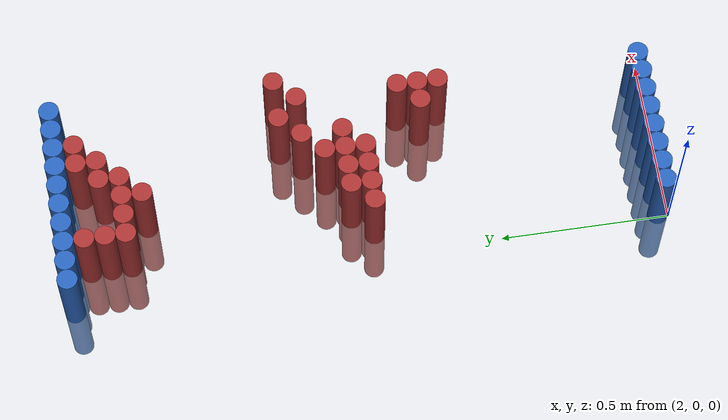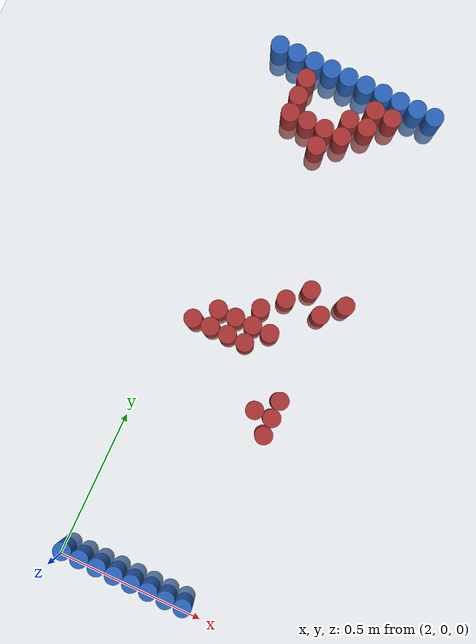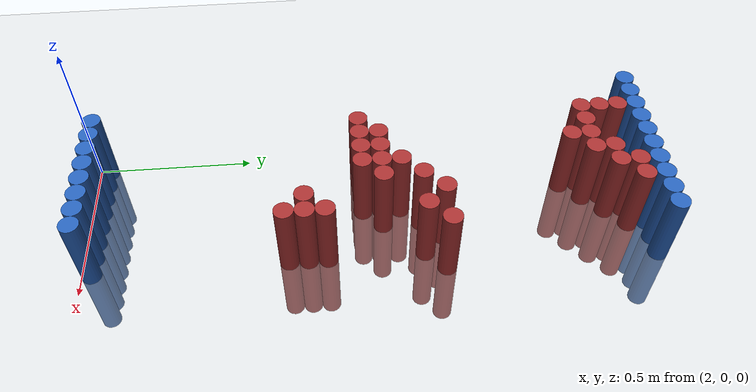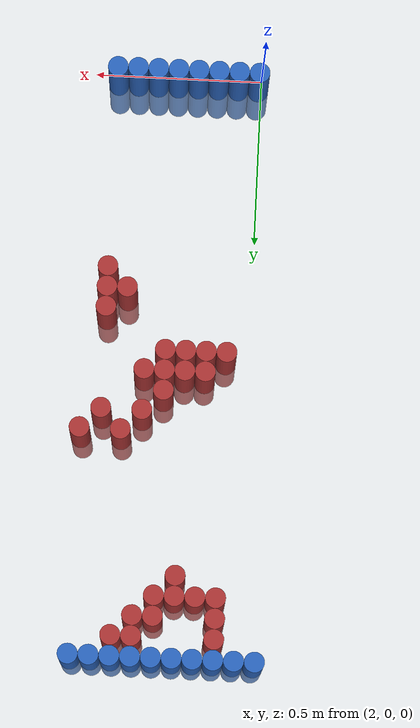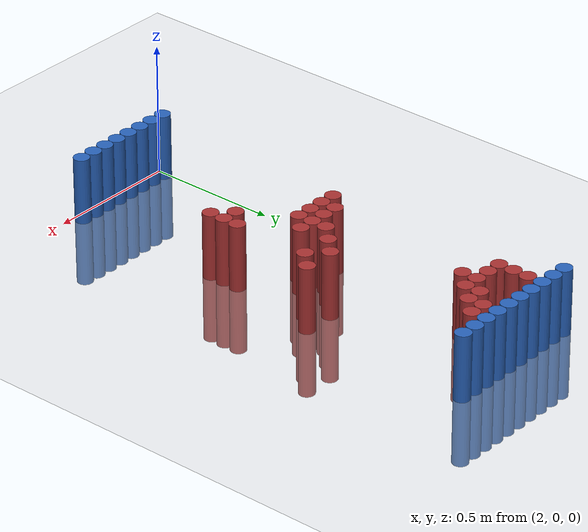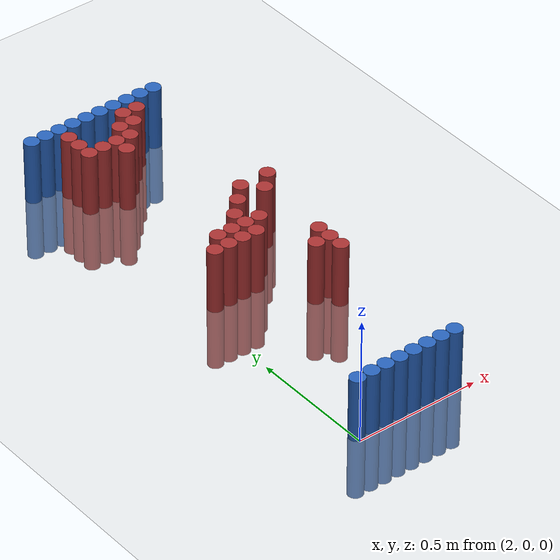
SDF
<sdf version="1.6">
 <world name="default">
  <model name="ground_plane">
   <static>1</static>
   <link name="link">
    <collision name="collision">
     <geometry><plane><normal>0 0 1</normal><size>100 100</size></plane></geometry>
     <surface><friction><ode><mu>100</mu><mu2>50</mu2></ode></friction></surface>
    </collision>
    <visual name="visual">
     <cast_shadows>0</cast_shadows>
     <geometry><plane><normal>0 0 1</normal><size>100 100</size></plane></geometry>
     <material>
      <script><uri>file://media/materials/scripts/gazebo.material</uri><name>Gazebo/Grey</name></script>
     </material>
    </visual>
   </link>
  </model>
  <model name="unit_cylinder_92">
   <static>1</static>
   <pose>1.950000 1.770000 0.000000 0.000000 0.000000 0.000000</pose>
   <link name="link">
    <inertial>
     <mass>1</mass>
     <inertia><ixx>0.145833</ixx><ixy>0</ixy><ixz>0</ixz><iyy>0.145833</iyy><iyz>0</iyz><izz>0.125</izz></inertia>
    </inertial>
    <collision name="collision">
     <geometry><cylinder><radius>0.030000</radius><length>0.5</length></cylinder></geometry>
    </collision>
    <visual name="visual">
     <geometry><cylinder><radius>0.030000</radius><length>0.5</length></cylinder></geometry>
     <material>
      <ambient>0.152000 0.379000 0.720000 1</ambient>
      <diffuse>0.152000 0.379000 0.720000 1</diffuse>
     </material>
     <material>
      <script><name>Gazebo/Grey</name><uri>file://media/materials/scripts/gazebo.material</uri></script>
     </material>
    </visual>
   </link>
  </model>
  <model name="unit_cylinder_93">
   <static>1</static>
   <pose>2.010000 0.030000 0.000000 0.000000 0.000000 0.000000</pose>
   <link name="link">
    <inertial>
     <mass>1</mass>
     <inertia><ixx>0.145833</ixx><ixy>0</ixy><ixz>0</ixz><iyy>0.145833</iyy><iyz>0</iyz><izz>0.125</izz></inertia>
    </inertial>
    <collision name="collision">
     <geometry><cylinder><radius>0.030000</radius><length>0.5</length></cylinder></geometry>
    </collision>
    <visual name="visual">
     <geometry><cylinder><radius>0.030000</radius><length>0.5</length></cylinder></geometry>
     <material>
      <ambient>0.152000 0.379000 0.720000 1</ambient>
      <diffuse>0.152000 0.379000 0.720000 1</diffuse>
     </material>
     <material>
      <script><name>Gazebo/Grey</name><uri>file://media/materials/scripts/gazebo.material</uri></script>
     </material>
    </visual>
   </link>
  </model>
  <model name="unit_cylinder_94">
   <static>1</static>
   <pose>2.010000 1.770000 0.000000 0.000000 0.000000 0.000000</pose>
   <link name="link">
    <inertial>
     <mass>1</mass>
     <inertia><ixx>0.145833</ixx><ixy>0</ixy><ixz>0</ixz><iyy>0.145833</iyy><iyz>0</iyz><izz>0.125</izz></inertia>
    </inertial>
    <collision name="collision">
     <geometry><cylinder><radius>0.030000</radius><length>0.5</length></cylinder></geometry>
    </collision>
    <visual name="visual">
     <geometry><cylinder><radius>0.030000</radius><length>0.5</length></cylinder></geometry>
     <material>
      <ambient>0.152000 0.379000 0.720000 1</ambient>
      <diffuse>0.152000 0.379000 0.720000 1</diffuse>
     </material>
     <material>
      <script><name>Gazebo/Grey</name><uri>file://media/materials/scripts/gazebo.material</uri></script>
     </material>
    </visual>
   </link>
  </model>
  <model name="unit_cylinder_95">
   <static>1</static>
   <pose>2.070000 1.770000 0.000000 0.000000 0.000000 0.000000</pose>
   <link name="link">
    <inertial>
     <mass>1</mass>
     <inertia><ixx>0.145833</ixx><ixy>0</ixy><ixz>0</ixz><iyy>0.145833</iyy><iyz>0</iyz><izz>0.125</izz></inertia>
    </inertial>
    <collision name="collision">
     <geometry><cylinder><radius>0.030000</radius><length>0.5</length></cylinder></geometry>
    </collision>
    <visual name="visual">
     <geometry><cylinder><radius>0.030000</radius><length>0.5</length></cylinder></geometry>
     <material>
      <ambient>0.152000 0.379000 0.720000 1</ambient>
      <diffuse>0.152000 0.379000 0.720000 1</diffuse>
     </material>
     <material>
      <script><name>Gazebo/Grey</name><uri>file://media/materials/scripts/gazebo.material</uri></script>
     </material>
    </visual>
   </link>
  </model>
  <model name="unit_cylinder_96">
   <static>1</static>
   <pose>2.130000 1.770000 0.000000 0.000000 0.000000 0.000000</pose>
   <link name="link">
    <inertial>
     <mass>1</mass>
     <inertia><ixx>0.145833</ixx><ixy>0</ixy><ixz>0</ixz><iyy>0.145833</iyy><iyz>0</iyz><izz>0.125</izz></inertia>
    </inertial>
    <collision name="collision">
     <geometry><cylinder><radius>0.030000</radius><length>0.5</length></cylinder></geometry>
    </collision>
    <visual name="visual">
     <geometry><cylinder><radius>0.030000</radius><length>0.5</length></cylinder></geometry>
     <material>
      <ambient>0.152000 0.379000 0.720000 1</ambient>
      <diffuse>0.152000 0.379000 0.720000 1</diffuse>
     </material>
     <material>
      <script><name>Gazebo/Grey</name><uri>file://media/materials/scripts/gazebo.material</uri></script>
     </material>
    </visual>
   </link>
  </model>
  <model name="unit_cylinder_97">
   <static>1</static>
   <pose>2.190000 1.770000 0.000000 0.000000 0.000000 0.000000</pose>
   <link name="link">
    <inertial>
     <mass>1</mass>
     <inertia><ixx>0.145833</ixx><ixy>0</ixy><ixz>0</ixz><iyy>0.145833</iyy><iyz>0</iyz><izz>0.125</izz></inertia>
    </inertial>
    <collision name="collision">
     <geometry><cylinder><radius>0.030000</radius><length>0.5</length></cylinder></geometry>
    </collision>
    <visual name="visual">
     <geometry><cylinder><radius>0.030000</radius><length>0.5</length></cylinder></geometry>
     <material>
      <ambient>0.152000 0.379000 0.720000 1</ambient>
      <diffuse>0.152000 0.379000 0.720000 1</diffuse>
     </material>
     <material>
      <script><name>Gazebo/Grey</name><uri>file://media/materials/scripts/gazebo.material</uri></script>
     </material>
    </visual>
   </link>
  </model>
  <model name="unit_cylinder_98">
   <static>1</static>
   <pose>2.250000 1.770000 0.000000 0.000000 0.000000 0.000000</pose>
   <link name="link">
    <inertial>
     <mass>1</mass>
     <inertia><ixx>0.145833</ixx><ixy>0</ixy><ixz>0</ixz><iyy>0.145833</iyy><iyz>0</iyz><izz>0.125</izz></inertia>
    </inertial>
    <collision name="collision">
     <geometry><cylinder><radius>0.030000</radius><length>0.5</length></cylinder></geometry>
    </collision>
    <visual name="visual">
     <geometry><cylinder><radius>0.030000</radius><length>0.5</length></cylinder></geometry>
     <material>
      <ambient>0.152000 0.379000 0.720000 1</ambient>
      <diffuse>0.152000 0.379000 0.720000 1</diffuse>
     </material>
     <material>
      <script><name>Gazebo/Grey</name><uri>file://media/materials/scripts/gazebo.material</uri></script>
     </material>
    </visual>
   </link>
  </model>
  <model name="unit_cylinder_99">
   <static>1</static>
   <pose>2.310000 1.770000 0.000000 0.000000 0.000000 0.000000</pose>
   <link name="link">
    <inertial>
     <mass>1</mass>
     <inertia><ixx>0.145833</ixx><ixy>0</ixy><ixz>0</ixz><iyy>0.145833</iyy><iyz>0</iyz><izz>0.125</izz></inertia>
    </inertial>
    <collision name="collision">
     <geometry><cylinder><radius>0.030000</radius><length>0.5</length></cylinder></geometry>
    </collision>
    <visual name="visual">
     <geometry><cylinder><radius>0.030000</radius><length>0.5</length></cylinder></geometry>
     <material>
      <ambient>0.152000 0.379000 0.720000 1</ambient>
      <diffuse>0.152000 0.379000 0.720000 1</diffuse>
     </material>
     <material>
      <script><name>Gazebo/Grey</name><uri>file://media/materials/scripts/gazebo.material</uri></script>
     </material>
    </visual>
   </link>
  </model>
  <model name="unit_cylinder_100">
   <static>1</static>
   <pose>2.370000 1.770000 0.000000 0.000000 0.000000 0.000000</pose>
   <link name="link">
    <inertial>
     <mass>1</mass>
     <inertia><ixx>0.145833</ixx><ixy>0</ixy><ixz>0</ixz><iyy>0.145833</iyy><iyz>0</iyz><izz>0.125</izz></inertia>
    </inertial>
    <collision name="collision">
     <geometry><cylinder><radius>0.030000</radius><length>0.5</length></cylinder></geometry>
    </collision>
    <visual name="visual">
     <geometry><cylinder><radius>0.030000</radius><length>0.5</length></cylinder></geometry>
     <material>
      <ambient>0.152000 0.379000 0.720000 1</ambient>
      <diffuse>0.152000 0.379000 0.720000 1</diffuse>
     </material>
     <material>
      <script><name>Gazebo/Grey</name><uri>file://media/materials/scripts/gazebo.material</uri></script>
     </material>
    </visual>
   </link>
  </model>
  <model name="unit_cylinder_101">
   <static>1</static>
   <pose>2.430000 1.770000 0.000000 0.000000 0.000000 0.000000</pose>
   <link name="link">
    <inertial>
     <mass>1</mass>
     <inertia><ixx>0.145833</ixx><ixy>0</ixy><ixz>0</ixz><iyy>0.145833</iyy><iyz>0</iyz><izz>0.125</izz></inertia>
    </inertial>
    <collision name="collision">
     <geometry><cylinder><radius>0.030000</radius><length>0.5</length></cylinder></geometry>
    </collision>
    <visual name="visual">
     <geometry><cylinder><radius>0.030000</radius><length>0.5</length></cylinder></geometry>
     <material>
      <ambient>0.152000 0.379000 0.720000 1</ambient>
      <diffuse>0.152000 0.379000 0.720000 1</diffuse>
     </material>
     <material>
      <script><name>Gazebo/Grey</name><uri>file://media/materials/scripts/gazebo.material</uri></script>
     </material>
    </visual>
   </link>
  </model>
  <model name="unit_cylinder_102">
   <static>1</static>
   <pose>2.490000 1.770000 0.000000 0.000000 0.000000 0.000000</pose>
   <link name="link">
    <inertial>
     <mass>1</mass>
     <inertia><ixx>0.145833</ixx><ixy>0</ixy><ixz>0</ixz><iyy>0.145833</iyy><iyz>0</iyz><izz>0.125</izz></inertia>
    </inertial>
    <collision name="collision">
     <geometry><cylinder><radius>0.030000</radius><length>0.5</length></cylinder></geometry>
    </collision>
    <visual name="visual">
     <geometry><cylinder><radius>0.030000</radius><length>0.5</length></cylinder></geometry>
     <material>
      <ambient>0.152000 0.379000 0.720000 1</ambient>
      <diffuse>0.152000 0.379000 0.720000 1</diffuse>
     </material>
     <material>
      <script><name>Gazebo/Grey</name><uri>file://media/materials/scripts/gazebo.material</uri></script>
     </material>
    </visual>
   </link>
  </model>
  <model name="unit_cylinder_125">
   <static>1</static>
   <pose>2.070000 1.710000 0.000000 0.000000 0.000000 0.000000</pose>
   <link name="link">
    <inertial>
     <mass>1</mass>
     <inertia><ixx>0.145833</ixx><ixy>0</ixy><ixz>0</ixz><iyy>0.145833</iyy><iyz>0</iyz><izz>0.125</izz></inertia>
    </inertial>
    <collision name="collision">
     <geometry><cylinder><radius>0.030000</radius><length>0.5</length></cylinder></geometry>
    </collision>
    <visual name="visual">
     <geometry><cylinder><radius>0.030000</radius><length>0.5</length></cylinder></geometry>
     <material>
      <ambient>0.648000 0.192000 0.192000 1</ambient>
      <diffuse>0.648000 0.192000 0.192000 1</diffuse>
     </material>
     <material>
      <script><name>Gazebo/Grey</name><uri>file://media/materials/scripts/gazebo.material</uri></script>
     </material>
    </visual>
   </link>
  </model>
  <model name="unit_cylinder_126">
   <static>1</static>
   <pose>2.310000 1.710000 0.000000 0.000000 0.000000 0.000000</pose>
   <link name="link">
    <inertial>
     <mass>1</mass>
     <inertia><ixx>0.145833</ixx><ixy>0</ixy><ixz>0</ixz><iyy>0.145833</iyy><iyz>0</iyz><izz>0.125</izz></inertia>
    </inertial>
    <collision name="collision">
     <geometry><cylinder><radius>0.030000</radius><length>0.5</length></cylinder></geometry>
    </collision>
    <visual name="visual">
     <geometry><cylinder><radius>0.030000</radius><length>0.5</length></cylinder></geometry>
     <material>
      <ambient>0.648000 0.192000 0.192000 1</ambient>
      <diffuse>0.648000 0.192000 0.192000 1</diffuse>
     </material>
     <material>
      <script><name>Gazebo/Grey</name><uri>file://media/materials/scripts/gazebo.material</uri></script>
     </material>
    </visual>
   </link>
  </model>
  <model name="unit_cylinder_127">
   <static>1</static>
   <pose>2.370000 1.710000 0.000000 0.000000 0.000000 0.000000</pose>
   <link name="link">
    <inertial>
     <mass>1</mass>
     <inertia><ixx>0.145833</ixx><ixy>0</ixy><ixz>0</ixz><iyy>0.145833</iyy><iyz>0</iyz><izz>0.125</izz></inertia>
    </inertial>
    <collision name="collision">
     <geometry><cylinder><radius>0.030000</radius><length>0.5</length></cylinder></geometry>
    </collision>
    <visual name="visual">
     <geometry><cylinder><radius>0.030000</radius><length>0.5</length></cylinder></geometry>
     <material>
      <ambient>0.648000 0.192000 0.192000 1</ambient>
      <diffuse>0.648000 0.192000 0.192000 1</diffuse>
     </material>
     <material>
      <script><name>Gazebo/Grey</name><uri>file://media/materials/scripts/gazebo.material</uri></script>
     </material>
    </visual>
   </link>
  </model>
  <model name="unit_cylinder_138">
   <static>1</static>
   <pose>2.070000 1.650000 0.000000 0.000000 0.000000 0.000000</pose>
   <link name="link">
    <inertial>
     <mass>1</mass>
     <inertia><ixx>0.145833</ixx><ixy>0</ixy><ixz>0</ixz><iyy>0.145833</iyy><iyz>0</iyz><izz>0.125</izz></inertia>
    </inertial>
    <collision name="collision">
     <geometry><cylinder><radius>0.030000</radius><length>0.5</length></cylinder></geometry>
    </collision>
    <visual name="visual">
     <geometry><cylinder><radius>0.030000</radius><length>0.5</length></cylinder></geometry>
     <material>
      <ambient>0.648000 0.192000 0.192000 1</ambient>
      <diffuse>0.648000 0.192000 0.192000 1</diffuse>
     </material>
     <material>
      <script><name>Gazebo/Grey</name><uri>file://media/materials/scripts/gazebo.material</uri></script>
     </material>
    </visual>
   </link>
  </model>
  <model name="unit_cylinder_139">
   <static>1</static>
   <pose>2.250000 1.650000 0.000000 0.000000 0.000000 0.000000</pose>
   <link name="link">
    <inertial>
     <mass>1</mass>
     <inertia><ixx>0.145833</ixx><ixy>0</ixy><ixz>0</ixz><iyy>0.145833</iyy><iyz>0</iyz><izz>0.125</izz></inertia>
    </inertial>
    <collision name="collision">
     <geometry><cylinder><radius>0.030000</radius><length>0.5</length></cylinder></geometry>
    </collision>
    <visual name="visual">
     <geometry><cylinder><radius>0.030000</radius><length>0.5</length></cylinder></geometry>
     <material>
      <ambient>0.648000 0.192000 0.192000 1</ambient>
      <diffuse>0.648000 0.192000 0.192000 1</diffuse>
     </material>
     <material>
      <script><name>Gazebo/Grey</name><uri>file://media/materials/scripts/gazebo.material</uri></script>
     </material>
    </visual>
   </link>
  </model>
  <model name="unit_cylinder_140">
   <static>1</static>
   <pose>2.310000 1.650000 0.000000 0.000000 0.000000 0.000000</pose>
   <link name="link">
    <inertial>
     <mass>1</mass>
     <inertia><ixx>0.145833</ixx><ixy>0</ixy><ixz>0</ixz><iyy>0.145833</iyy><iyz>0</iyz><izz>0.125</izz></inertia>
    </inertial>
    <collision name="collision">
     <geometry><cylinder><radius>0.030000</radius><length>0.5</length></cylinder></geometry>
    </collision>
    <visual name="visual">
     <geometry><cylinder><radius>0.030000</radius><length>0.5</length></cylinder></geometry>
     <material>
      <ambient>0.648000 0.192000 0.192000 1</ambient>
      <diffuse>0.648000 0.192000 0.192000 1</diffuse>
     </material>
     <material>
      <script><name>Gazebo/Grey</name><uri>file://media/materials/scripts/gazebo.material</uri></script>
     </material>
    </visual>
   </link>
  </model>
  <model name="unit_cylinder_146">
   <static>1</static>
   <pose>2.070000 1.590000 0.000000 0.000000 0.000000 0.000000</pose>
   <link name="link">
    <inertial>
     <mass>1</mass>
     <inertia><ixx>0.145833</ixx><ixy>0</ixy><ixz>0</ixz><iyy>0.145833</iyy><iyz>0</iyz><izz>0.125</izz></inertia>
    </inertial>
    <collision name="collision">
     <geometry><cylinder><radius>0.030000</radius><length>0.5</length></cylinder></geometry>
    </collision>
    <visual name="visual">
     <geometry><cylinder><radius>0.030000</radius><length>0.5</length></cylinder></geometry>
     <material>
      <ambient>0.648000 0.192000 0.192000 1</ambient>
      <diffuse>0.648000 0.192000 0.192000 1</diffuse>
     </material>
     <material>
      <script><name>Gazebo/Grey</name><uri>file://media/materials/scripts/gazebo.material</uri></script>
     </material>
    </visual>
   </link>
  </model>
  <model name="unit_cylinder_147">
   <static>1</static>
   <pose>2.130000 1.590000 0.000000 0.000000 0.000000 0.000000</pose>
   <link name="link">
    <inertial>
     <mass>1</mass>
     <inertia><ixx>0.145833</ixx><ixy>0</ixy><ixz>0</ixz><iyy>0.145833</iyy><iyz>0</iyz><izz>0.125</izz></inertia>
    </inertial>
    <collision name="collision">
     <geometry><cylinder><radius>0.030000</radius><length>0.5</length></cylinder></geometry>
    </collision>
    <visual name="visual">
     <geometry><cylinder><radius>0.030000</radius><length>0.5</length></cylinder></geometry>
     <material>
      <ambient>0.648000 0.192000 0.192000 1</ambient>
      <diffuse>0.648000 0.192000 0.192000 1</diffuse>
     </material>
     <material>
      <script><name>Gazebo/Grey</name><uri>file://media/materials/scripts/gazebo.material</uri></script>
     </material>
    </visual>
   </link>
  </model>
  <model name="unit_cylinder_148">
   <static>1</static>
   <pose>2.190000 1.590000 0.000000 0.000000 0.000000 0.000000</pose>
   <link name="link">
    <inertial>
     <mass>1</mass>
     <inertia><ixx>0.145833</ixx><ixy>0</ixy><ixz>0</ixz><iyy>0.145833</iyy><iyz>0</iyz><izz>0.125</izz></inertia>
    </inertial>
    <collision name="collision">
     <geometry><cylinder><radius>0.030000</radius><length>0.5</length></cylinder></geometry>
    </collision>
    <visual name="visual">
     <geometry><cylinder><radius>0.030000</radius><length>0.5</length></cylinder></geometry>
     <material>
      <ambient>0.648000 0.192000 0.192000 1</ambient>
      <diffuse>0.648000 0.192000 0.192000 1</diffuse>
     </material>
     <material>
      <script><name>Gazebo/Grey</name><uri>file://media/materials/scripts/gazebo.material</uri></script>
     </material>
    </visual>
   </link>
  </model>
  <model name="unit_cylinder_149">
   <static>1</static>
   <pose>2.250000 1.590000 0.000000 0.000000 0.000000 0.000000</pose>
   <link name="link">
    <inertial>
     <mass>1</mass>
     <inertia><ixx>0.145833</ixx><ixy>0</ixy><ixz>0</ixz><iyy>0.145833</iyy><iyz>0</iyz><izz>0.125</izz></inertia>
    </inertial>
    <collision name="collision">
     <geometry><cylinder><radius>0.030000</radius><length>0.5</length></cylinder></geometry>
    </collision>
    <visual name="visual">
     <geometry><cylinder><radius>0.030000</radius><length>0.5</length></cylinder></geometry>
     <material>
      <ambient>0.648000 0.192000 0.192000 1</ambient>
      <diffuse>0.648000 0.192000 0.192000 1</diffuse>
     </material>
     <material>
      <script><name>Gazebo/Grey</name><uri>file://media/materials/scripts/gazebo.material</uri></script>
     </material>
    </visual>
   </link>
  </model>
  <model name="unit_cylinder_152">
   <static>1</static>
   <pose>2.190000 1.530000 0.000000 0.000000 0.000000 0.000000</pose>
   <link name="link">
    <inertial>
     <mass>1</mass>
     <inertia><ixx>0.145833</ixx><ixy>0</ixy><ixz>0</ixz><iyy>0.145833</iyy><iyz>0</iyz><izz>0.125</izz></inertia>
    </inertial>
    <collision name="collision">
     <geometry><cylinder><radius>0.030000</radius><length>0.5</length></cylinder></geometry>
    </collision>
    <visual name="visual">
     <geometry><cylinder><radius>0.030000</radius><length>0.5</length></cylinder></geometry>
     <material>
      <ambient>0.648000 0.192000 0.192000 1</ambient>
      <diffuse>0.648000 0.192000 0.192000 1</diffuse>
     </material>
     <material>
      <script><name>Gazebo/Grey</name><uri>file://media/materials/scripts/gazebo.material</uri></script>
     </material>
    </visual>
   </link>
  </model>
  <model name="unit_cylinder_181">
   <static>1</static>
   <pose>2.370000 1.110000 0.000000 0.000000 0.000000 0.000000</pose>
   <link name="link">
    <inertial>
     <mass>1</mass>
     <inertia><ixx>0.145833</ixx><ixy>0</ixy><ixz>0</ixz><iyy>0.145833</iyy><iyz>0</iyz><izz>0.125</izz></inertia>
    </inertial>
    <collision name="collision">
     <geometry><cylinder><radius>0.030000</radius><length>0.5</length></cylinder></geometry>
    </collision>
    <visual name="visual">
     <geometry><cylinder><radius>0.030000</radius><length>0.5</length></cylinder></geometry>
     <material>
      <ambient>0.648000 0.192000 0.192000 1</ambient>
      <diffuse>0.648000 0.192000 0.192000 1</diffuse>
     </material>
     <material>
      <script><name>Gazebo/Grey</name><uri>file://media/materials/scripts/gazebo.material</uri></script>
     </material>
    </visual>
   </link>
  </model>
  <model name="unit_cylinder_182">
   <static>1</static>
   <pose>2.490000 1.110000 0.000000 0.000000 0.000000 0.000000</pose>
   <link name="link">
    <inertial>
     <mass>1</mass>
     <inertia><ixx>0.145833</ixx><ixy>0</ixy><ixz>0</ixz><iyy>0.145833</iyy><iyz>0</iyz><izz>0.125</izz></inertia>
    </inertial>
    <collision name="collision">
     <geometry><cylinder><radius>0.030000</radius><length>0.5</length></cylinder></geometry>
    </collision>
    <visual name="visual">
     <geometry><cylinder><radius>0.030000</radius><length>0.5</length></cylinder></geometry>
     <material>
      <ambient>0.648000 0.192000 0.192000 1</ambient>
      <diffuse>0.648000 0.192000 0.192000 1</diffuse>
     </material>
     <material>
      <script><name>Gazebo/Grey</name><uri>file://media/materials/scripts/gazebo.material</uri></script>
     </material>
    </visual>
   </link>
  </model>
  <model name="unit_cylinder_186">
   <static>1</static>
   <pose>2.310000 1.050000 0.000000 0.000000 0.000000 0.000000</pose>
   <link name="link">
    <inertial>
     <mass>1</mass>
     <inertia><ixx>0.145833</ixx><ixy>0</ixy><ixz>0</ixz><iyy>0.145833</iyy><iyz>0</iyz><izz>0.125</izz></inertia>
    </inertial>
    <collision name="collision">
     <geometry><cylinder><radius>0.030000</radius><length>0.5</length></cylinder></geometry>
    </collision>
    <visual name="visual">
     <geometry><cylinder><radius>0.030000</radius><length>0.5</length></cylinder></geometry>
     <material>
      <ambient>0.648000 0.192000 0.192000 1</ambient>
      <diffuse>0.648000 0.192000 0.192000 1</diffuse>
     </material>
     <material>
      <script><name>Gazebo/Grey</name><uri>file://media/materials/scripts/gazebo.material</uri></script>
     </material>
    </visual>
   </link>
  </model>
  <model name="unit_cylinder_187">
   <static>1</static>
   <pose>2.430000 1.050000 0.000000 0.000000 0.000000 0.000000</pose>
   <link name="link">
    <inertial>
     <mass>1</mass>
     <inertia><ixx>0.145833</ixx><ixy>0</ixy><ixz>0</ixz><iyy>0.145833</iyy><iyz>0</iyz><izz>0.125</izz></inertia>
    </inertial>
    <collision name="collision">
     <geometry><cylinder><radius>0.030000</radius><length>0.5</length></cylinder></geometry>
    </collision>
    <visual name="visual">
     <geometry><cylinder><radius>0.030000</radius><length>0.5</length></cylinder></geometry>
     <material>
      <ambient>0.648000 0.192000 0.192000 1</ambient>
      <diffuse>0.648000 0.192000 0.192000 1</diffuse>
     </material>
     <material>
      <script><name>Gazebo/Grey</name><uri>file://media/materials/scripts/gazebo.material</uri></script>
     </material>
    </visual>
   </link>
  </model>
  <model name="unit_cylinder_190">
   <static>1</static>
   <pose>2.250000 0.990000 0.000000 0.000000 0.000000 0.000000</pose>
   <link name="link">
    <inertial>
     <mass>1</mass>
     <inertia><ixx>0.145833</ixx><ixy>0</ixy><ixz>0</ixz><iyy>0.145833</iyy><iyz>0</iyz><izz>0.125</izz></inertia>
    </inertial>
    <collision name="collision">
     <geometry><cylinder><radius>0.030000</radius><length>0.5</length></cylinder></geometry>
    </collision>
    <visual name="visual">
     <geometry><cylinder><radius>0.030000</radius><length>0.5</length></cylinder></geometry>
     <material>
      <ambient>0.648000 0.192000 0.192000 1</ambient>
      <diffuse>0.648000 0.192000 0.192000 1</diffuse>
     </material>
     <material>
      <script><name>Gazebo/Grey</name><uri>file://media/materials/scripts/gazebo.material</uri></script>
     </material>
    </visual>
   </link>
  </model>
  <model name="unit_cylinder_191">
   <static>1</static>
   <pose>2.130000 0.930000 0.000000 0.000000 0.000000 0.000000</pose>
   <link name="link">
    <inertial>
     <mass>1</mass>
     <inertia><ixx>0.145833</ixx><ixy>0</ixy><ixz>0</ixz><iyy>0.145833</iyy><iyz>0</iyz><izz>0.125</izz></inertia>
    </inertial>
    <collision name="collision">
     <geometry><cylinder><radius>0.030000</radius><length>0.5</length></cylinder></geometry>
    </collision>
    <visual name="visual">
     <geometry><cylinder><radius>0.030000</radius><length>0.5</length></cylinder></geometry>
     <material>
      <ambient>0.648000 0.192000 0.192000 1</ambient>
      <diffuse>0.648000 0.192000 0.192000 1</diffuse>
     </material>
     <material>
      <script><name>Gazebo/Grey</name><uri>file://media/materials/scripts/gazebo.material</uri></script>
     </material>
    </visual>
   </link>
  </model>
  <model name="unit_cylinder_192">
   <static>1</static>
   <pose>2.190000 0.930000 0.000000 0.000000 0.000000 0.000000</pose>
   <link name="link">
    <inertial>
     <mass>1</mass>
     <inertia><ixx>0.145833</ixx><ixy>0</ixy><ixz>0</ixz><iyy>0.145833</iyy><iyz>0</iyz><izz>0.125</izz></inertia>
    </inertial>
    <collision name="collision">
     <geometry><cylinder><radius>0.030000</radius><length>0.5</length></cylinder></geometry>
    </collision>
    <visual name="visual">
     <geometry><cylinder><radius>0.030000</radius><length>0.5</length></cylinder></geometry>
     <material>
      <ambient>0.648000 0.192000 0.192000 1</ambient>
      <diffuse>0.648000 0.192000 0.192000 1</diffuse>
     </material>
     <material>
      <script><name>Gazebo/Grey</name><uri>file://media/materials/scripts/gazebo.material</uri></script>
     </material>
    </visual>
   </link>
  </model>
  <model name="unit_cylinder_193">
   <static>1</static>
   <pose>2.250000 0.930000 0.000000 0.000000 0.000000 0.000000</pose>
   <link name="link">
    <inertial>
     <mass>1</mass>
     <inertia><ixx>0.145833</ixx><ixy>0</ixy><ixz>0</ixz><iyy>0.145833</iyy><iyz>0</iyz><izz>0.125</izz></inertia>
    </inertial>
    <collision name="collision">
     <geometry><cylinder><radius>0.030000</radius><length>0.5</length></cylinder></geometry>
    </collision>
    <visual name="visual">
     <geometry><cylinder><radius>0.030000</radius><length>0.5</length></cylinder></geometry>
     <material>
      <ambient>0.648000 0.192000 0.192000 1</ambient>
      <diffuse>0.648000 0.192000 0.192000 1</diffuse>
     </material>
     <material>
      <script><name>Gazebo/Grey</name><uri>file://media/materials/scripts/gazebo.material</uri></script>
     </material>
    </visual>
   </link>
  </model>
  <model name="unit_cylinder_194">
   <static>1</static>
   <pose>2.310000 0.930000 0.000000 0.000000 0.000000 0.000000</pose>
   <link name="link">
    <inertial>
     <mass>1</mass>
     <inertia><ixx>0.145833</ixx><ixy>0</ixy><ixz>0</ixz><iyy>0.145833</iyy><iyz>0</iyz><izz>0.125</izz></inertia>
    </inertial>
    <collision name="collision">
     <geometry><cylinder><radius>0.030000</radius><length>0.5</length></cylinder></geometry>
    </collision>
    <visual name="visual">
     <geometry><cylinder><radius>0.030000</radius><length>0.5</length></cylinder></geometry>
     <material>
      <ambient>0.648000 0.192000 0.192000 1</ambient>
      <diffuse>0.648000 0.192000 0.192000 1</diffuse>
     </material>
     <material>
      <script><name>Gazebo/Grey</name><uri>file://media/materials/scripts/gazebo.material</uri></script>
     </material>
    </visual>
   </link>
  </model>
  <model name="unit_cylinder_195">
   <static>1</static>
   <pose>2.070000 0.870000 0.000000 0.000000 0.000000 0.000000</pose>
   <link name="link">
    <inertial>
     <mass>1</mass>
     <inertia><ixx>0.145833</ixx><ixy>0</ixy><ixz>0</ixz><iyy>0.145833</iyy><iyz>0</iyz><izz>0.125</izz></inertia>
    </inertial>
    <collision name="collision">
     <geometry><cylinder><radius>0.030000</radius><length>0.5</length></cylinder></geometry>
    </collision>
    <visual name="visual">
     <geometry><cylinder><radius>0.030000</radius><length>0.5</length></cylinder></geometry>
     <material>
      <ambient>0.648000 0.192000 0.192000 1</ambient>
      <diffuse>0.648000 0.192000 0.192000 1</diffuse>
     </material>
     <material>
      <script><name>Gazebo/Grey</name><uri>file://media/materials/scripts/gazebo.material</uri></script>
     </material>
    </visual>
   </link>
  </model>
  <model name="unit_cylinder_196">
   <static>1</static>
   <pose>2.130000 0.870000 0.000000 0.000000 0.000000 0.000000</pose>
   <link name="link">
    <inertial>
     <mass>1</mass>
     <inertia><ixx>0.145833</ixx><ixy>0</ixy><ixz>0</ixz><iyy>0.145833</iyy><iyz>0</iyz><izz>0.125</izz></inertia>
    </inertial>
    <collision name="collision">
     <geometry><cylinder><radius>0.030000</radius><length>0.5</length></cylinder></geometry>
    </collision>
    <visual name="visual">
     <geometry><cylinder><radius>0.030000</radius><length>0.5</length></cylinder></geometry>
     <material>
      <ambient>0.648000 0.192000 0.192000 1</ambient>
      <diffuse>0.648000 0.192000 0.192000 1</diffuse>
     </material>
     <material>
      <script><name>Gazebo/Grey</name><uri>file://media/materials/scripts/gazebo.material</uri></script>
     </material>
    </visual>
   </link>
  </model>
  <model name="unit_cylinder_197">
   <static>1</static>
   <pose>2.190000 0.870000 0.000000 0.000000 0.000000 0.000000</pose>
   <link name="link">
    <inertial>
     <mass>1</mass>
     <inertia><ixx>0.145833</ixx><ixy>0</ixy><ixz>0</ixz><iyy>0.145833</iyy><iyz>0</iyz><izz>0.125</izz></inertia>
    </inertial>
    <collision name="collision">
     <geometry><cylinder><radius>0.030000</radius><length>0.5</length></cylinder></geometry>
    </collision>
    <visual name="visual">
     <geometry><cylinder><radius>0.030000</radius><length>0.5</length></cylinder></geometry>
     <material>
      <ambient>0.648000 0.192000 0.192000 1</ambient>
      <diffuse>0.648000 0.192000 0.192000 1</diffuse>
     </material>
     <material>
      <script><name>Gazebo/Grey</name><uri>file://media/materials/scripts/gazebo.material</uri></script>
     </material>
    </visual>
   </link>
  </model>
  <model name="unit_cylinder_198">
   <static>1</static>
   <pose>2.250000 0.870000 0.000000 0.000000 0.000000 0.000000</pose>
   <link name="link">
    <inertial>
     <mass>1</mass>
     <inertia><ixx>0.145833</ixx><ixy>0</ixy><ixz>0</ixz><iyy>0.145833</iyy><iyz>0</iyz><izz>0.125</izz></inertia>
    </inertial>
    <collision name="collision">
     <geometry><cylinder><radius>0.030000</radius><length>0.5</length></cylinder></geometry>
    </collision>
    <visual name="visual">
     <geometry><cylinder><radius>0.030000</radius><length>0.5</length></cylinder></geometry>
     <material>
      <ambient>0.648000 0.192000 0.192000 1</ambient>
      <diffuse>0.648000 0.192000 0.192000 1</diffuse>
     </material>
     <material>
      <script><name>Gazebo/Grey</name><uri>file://media/materials/scripts/gazebo.material</uri></script>
     </material>
    </visual>
   </link>
  </model>
  <model name="unit_cylinder_202">
   <static>1</static>
   <pose>2.430000 0.750000 0.000000 0.000000 0.000000 0.000000</pose>
   <link name="link">
    <inertial>
     <mass>1</mass>
     <inertia><ixx>0.145833</ixx><ixy>0</ixy><ixz>0</ixz><iyy>0.145833</iyy><iyz>0</iyz><izz>0.125</izz></inertia>
    </inertial>
    <collision name="collision">
     <geometry><cylinder><radius>0.030000</radius><length>0.5</length></cylinder></geometry>
    </collision>
    <visual name="visual">
     <geometry><cylinder><radius>0.030000</radius><length>0.5</length></cylinder></geometry>
     <material>
      <ambient>0.648000 0.192000 0.192000 1</ambient>
      <diffuse>0.648000 0.192000 0.192000 1</diffuse>
     </material>
     <material>
      <script><name>Gazebo/Grey</name><uri>file://media/materials/scripts/gazebo.material</uri></script>
     </material>
    </visual>
   </link>
  </model>
  <model name="unit_cylinder_208">
   <static>1</static>
   <pose>2.370000 0.690000 0.000000 0.000000 0.000000 0.000000</pose>
   <link name="link">
    <inertial>
     <mass>1</mass>
     <inertia><ixx>0.145833</ixx><ixy>0</ixy><ixz>0</ixz><iyy>0.145833</iyy><iyz>0</iyz><izz>0.125</izz></inertia>
    </inertial>
    <collision name="collision">
     <geometry><cylinder><radius>0.030000</radius><length>0.5</length></cylinder></geometry>
    </collision>
    <visual name="visual">
     <geometry><cylinder><radius>0.030000</radius><length>0.5</length></cylinder></geometry>
     <material>
      <ambient>0.648000 0.192000 0.192000 1</ambient>
      <diffuse>0.648000 0.192000 0.192000 1</diffuse>
     </material>
     <material>
      <script><name>Gazebo/Grey</name><uri>file://media/materials/scripts/gazebo.material</uri></script>
     </material>
    </visual>
   </link>
  </model>
  <model name="unit_cylinder_209">
   <static>1</static>
   <pose>2.430000 0.690000 0.000000 0.000000 0.000000 0.000000</pose>
   <link name="link">
    <inertial>
     <mass>1</mass>
     <inertia><ixx>0.145833</ixx><ixy>0</ixy><ixz>0</ixz><iyy>0.145833</iyy><iyz>0</iyz><izz>0.125</izz></inertia>
    </inertial>
    <collision name="collision">
     <geometry><cylinder><radius>0.030000</radius><length>0.5</length></cylinder></geometry>
    </collision>
    <visual name="visual">
     <geometry><cylinder><radius>0.030000</radius><length>0.5</length></cylinder></geometry>
     <material>
      <ambient>0.648000 0.192000 0.192000 1</ambient>
      <diffuse>0.648000 0.192000 0.192000 1</diffuse>
     </material>
     <material>
      <script><name>Gazebo/Grey</name><uri>file://media/materials/scripts/gazebo.material</uri></script>
     </material>
    </visual>
   </link>
  </model>
  <model name="unit_cylinder_215">
   <static>1</static>
   <pose>2.430000 0.630000 0.000000 0.000000 0.000000 0.000000</pose>
   <link name="link">
    <inertial>
     <mass>1</mass>
     <inertia><ixx>0.145833</ixx><ixy>0</ixy><ixz>0</ixz><iyy>0.145833</iyy><iyz>0</iyz><izz>0.125</izz></inertia>
    </inertial>
    <collision name="collision">
     <geometry><cylinder><radius>0.030000</radius><length>0.5</length></cylinder></geometry>
    </collision>
    <visual name="visual">
     <geometry><cylinder><radius>0.030000</radius><length>0.5</length></cylinder></geometry>
     <material>
      <ambient>0.648000 0.192000 0.192000 1</ambient>
      <diffuse>0.648000 0.192000 0.192000 1</diffuse>
     </material>
     <material>
      <script><name>Gazebo/Grey</name><uri>file://media/materials/scripts/gazebo.material</uri></script>
     </material>
    </visual>
   </link>
  </model>
  <model name="unit_cylinder_245">
   <static>1</static>
   <pose>2.070000 0.030000 0.000000 0.000000 0.000000 0.000000</pose>
   <link name="link">
    <inertial>
     <mass>1</mass>
     <inertia><ixx>0.145833</ixx><ixy>0</ixy><ixz>0</ixz><iyy>0.145833</iyy><iyz>0</iyz><izz>0.125</izz></inertia>
    </inertial>
    <collision name="collision">
     <geometry><cylinder><radius>0.030000</radius><length>0.5</length></cylinder></geometry>
    </collision>
    <visual name="visual">
     <geometry><cylinder><radius>0.030000</radius><length>0.5</length></cylinder></geometry>
     <material>
      <ambient>0.152000 0.379000 0.720000 1</ambient>
      <diffuse>0.152000 0.379000 0.720000 1</diffuse>
     </material>
     <material>
      <script><name>Gazebo/Grey</name><uri>file://media/materials/scripts/gazebo.material</uri></script>
     </material>
    </visual>
   </link>
  </model>
  <model name="unit_cylinder_246">
   <static>1</static>
   <pose>2.130000 0.030000 0.000000 0.000000 0.000000 0.000000</pose>
   <link name="link">
    <inertial>
     <mass>1</mass>
     <inertia><ixx>0.145833</ixx><ixy>0</ixy><ixz>0</ixz><iyy>0.145833</iyy><iyz>0</iyz><izz>0.125</izz></inertia>
    </inertial>
    <collision name="collision">
     <geometry><cylinder><radius>0.030000</radius><length>0.5</length></cylinder></geometry>
    </collision>
    <visual name="visual">
     <geometry><cylinder><radius>0.030000</radius><length>0.5</length></cylinder></geometry>
     <material>
      <ambient>0.152000 0.379000 0.720000 1</ambient>
      <diffuse>0.152000 0.379000 0.720000 1</diffuse>
     </material>
     <material>
      <script><name>Gazebo/Grey</name><uri>file://media/materials/scripts/gazebo.material</uri></script>
     </material>
    </visual>
   </link>
  </model>
  <model name="unit_cylinder_247">
   <static>1</static>
   <pose>2.190000 0.030000 0.000000 0.000000 0.000000 0.000000</pose>
   <link name="link">
    <inertial>
     <mass>1</mass>
     <inertia><ixx>0.145833</ixx><ixy>0</ixy><ixz>0</ixz><iyy>0.145833</iyy><iyz>0</iyz><izz>0.125</izz></inertia>
    </inertial>
    <collision name="collision">
     <geometry><cylinder><radius>0.030000</radius><length>0.5</length></cylinder></geometry>
    </collision>
    <visual name="visual">
     <geometry><cylinder><radius>0.030000</radius><length>0.5</length></cylinder></geometry>
     <material>
      <ambient>0.152000 0.379000 0.720000 1</ambient>
      <diffuse>0.152000 0.379000 0.720000 1</diffuse>
     </material>
     <material>
      <script><name>Gazebo/Grey</name><uri>file://media/materials/scripts/gazebo.material</uri></script>
     </material>
    </visual>
   </link>
  </model>
  <model name="unit_cylinder_248">
   <static>1</static>
   <pose>2.250000 0.030000 0.000000 0.000000 0.000000 0.000000</pose>
   <link name="link">
    <inertial>
     <mass>1</mass>
     <inertia><ixx>0.145833</ixx><ixy>0</ixy><ixz>0</ixz><iyy>0.145833</iyy><iyz>0</iyz><izz>0.125</izz></inertia>
    </inertial>
    <collision name="collision">
     <geometry><cylinder><radius>0.030000</radius><length>0.5</length></cylinder></geometry>
    </collision>
    <visual name="visual">
     <geometry><cylinder><radius>0.030000</radius><length>0.5</length></cylinder></geometry>
     <material>
      <ambient>0.152000 0.379000 0.720000 1</ambient>
      <diffuse>0.152000 0.379000 0.720000 1</diffuse>
     </material>
     <material>
      <script><name>Gazebo/Grey</name><uri>file://media/materials/scripts/gazebo.material</uri></script>
     </material>
    </visual>
   </link>
  </model>
  <model name="unit_cylinder_249">
   <static>1</static>
   <pose>2.310000 0.030000 0.000000 0.000000 0.000000 0.000000</pose>
   <link name="link">
    <inertial>
     <mass>1</mass>
     <inertia><ixx>0.145833</ixx><ixy>0</ixy><ixz>0</ixz><iyy>0.145833</iyy><iyz>0</iyz><izz>0.125</izz></inertia>
    </inertial>
    <collision name="collision">
     <geometry><cylinder><radius>0.030000</radius><length>0.5</length></cylinder></geometry>
    </collision>
    <visual name="visual">
     <geometry><cylinder><radius>0.030000</radius><length>0.5</length></cylinder></geometry>
     <material>
      <ambient>0.152000 0.379000 0.720000 1</ambient>
      <diffuse>0.152000 0.379000 0.720000 1</diffuse>
     </material>
     <material>
      <script><name>Gazebo/Grey</name><uri>file://media/materials/scripts/gazebo.material</uri></script>
     </material>
    </visual>
   </link>
  </model>
  <model name="unit_cylinder_250">
   <static>1</static>
   <pose>2.370000 0.030000 0.000000 0.000000 0.000000 0.000000</pose>
   <link name="link">
    <inertial>
     <mass>1</mass>
     <inertia><ixx>0.145833</ixx><ixy>0</ixy><ixz>0</ixz><iyy>0.145833</iyy><iyz>0</iyz><izz>0.125</izz></inertia>
    </inertial>
    <collision name="collision">
     <geometry><cylinder><radius>0.030000</radius><length>0.5</length></cylinder></geometry>
    </collision>
    <visual name="visual">
     <geometry><cylinder><radius>0.030000</radius><length>0.5</length></cylinder></geometry>
     <material>
      <ambient>0.152000 0.379000 0.720000 1</ambient>
      <diffuse>0.152000 0.379000 0.720000 1</diffuse>
     </material>
     <material>
      <script><name>Gazebo/Grey</name><uri>file://media/materials/scripts/gazebo.material</uri></script>
     </material>
    </visual>
   </link>
  </model>
  <model name="unit_cylinder_251">
   <static>1</static>
   <pose>2.430000 0.030000 0.000000 0.000000 0.000000 0.000000</pose>
   <link name="link">
    <inertial>
     <mass>1</mass>
     <inertia><ixx>0.145833</ixx><ixy>0</ixy><ixz>0</ixz><iyy>0.145833</iyy><iyz>0</iyz><izz>0.125</izz></inertia>
    </inertial>
    <collision name="collision">
     <geometry><cylinder><radius>0.030000</radius><length>0.5</length></cylinder></geometry>
    </collision>
    <visual name="visual">
     <geometry><cylinder><radius>0.030000</radius><length>0.5</length></cylinder></geometry>
     <material>
      <ambient>0.152000 0.379000 0.720000 1</ambient>
      <diffuse>0.152000 0.379000 0.720000 1</diffuse>
     </material>
     <material>
      <script><name>Gazebo/Grey</name><uri>file://media/materials/scripts/gazebo.material</uri></script>
     </material>
    </visual>
   </link>
  </model>
 </world>
</sdf>
